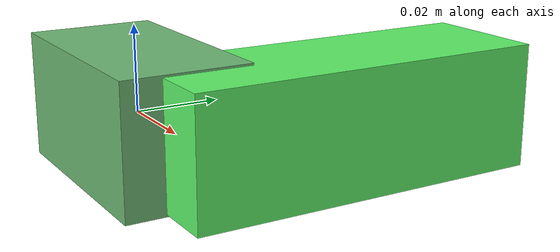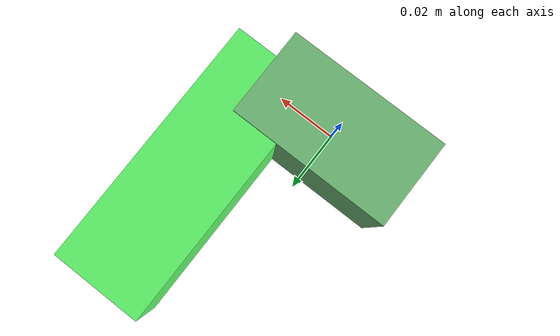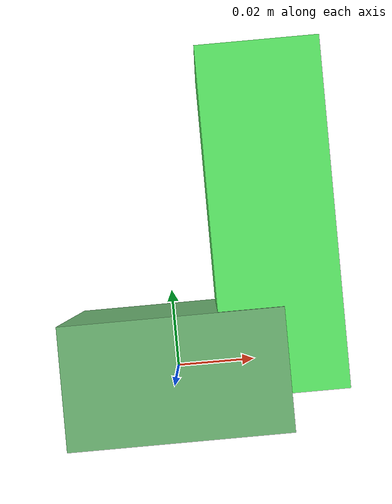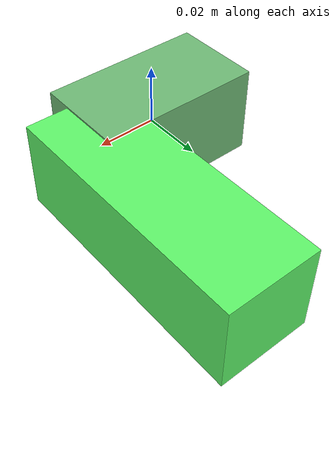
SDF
<sdf version="1.4"><world name="default"><model name="object0"><link name="link1"><pose>0 0 0 0 0 0</pose><inertial><pose>0 0 0 0 0 0</pose><mass>0.029434899943728467</mass><inertia><ixx>4.41523499155927e-06</ixx><ixy>0</ixy><iyy>9.495794741072082e-06</iyy><ixz>0</ixz><iyz>0</iyz><izz>9.495794741072082e-06</izz></inertia></inertial><visual name="link1_visual"><pose>0 0  0 0 0 0</pose><geometry><box><size>0.05450907396986753 0.03 0.03</size></box></geometry><material><diffuse>0.4355326068550691 0.73027666448556 0.4612312827836583 1</diffuse></material></visual><collision><pose>0 0  0 0 0 0</pose><geometry><box><size>0.05450907396986753 0.03 0.03</size></box></geometry></collision></link><link name="link2"><pose>0.02631718558754038 0.03651351196706329 0 0 0 0</pose><inertial><pose>0 0 0 0 0 0</pose><mass>0.04568218558394101</mass><inertia><ixx>3.044562157210343e-05</ixx><ixy>0</ixy><iyy>6.627723758470107e-06</iyy><ixz>0</ixz><iyz>0</iyz><izz>3.0670225651224475e-05</izz></inertia></inertial><visual name="link2_visual"><pose>0 0  0 0 0 0</pose><geometry><box><size>0.03 0.08459663997026112 0.028999999999999998</size></box></geometry><material><diffuse>0.37489616385543323 0.9685571757077363 0.4169935841654723 1</diffuse></material></visual><collision><pose>0 0  0 0 0 0</pose><geometry><box><size>0.03 0.08459663997026112 0.028999999999999998</size></box></geometry></collision></link><joint name="link_joint_0" type="fixed"><parent>link1</parent><child>link2</child><pose>0 0 0 0 0 0</pose><axis><xyz>0 0 1</xyz></axis></joint></model></world></sdf>
